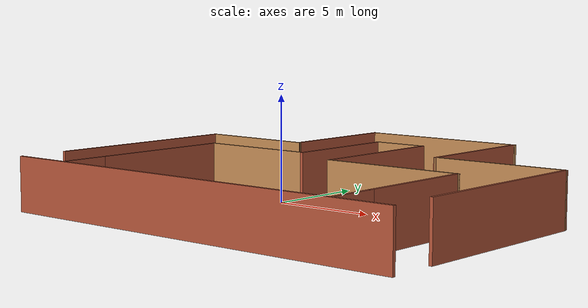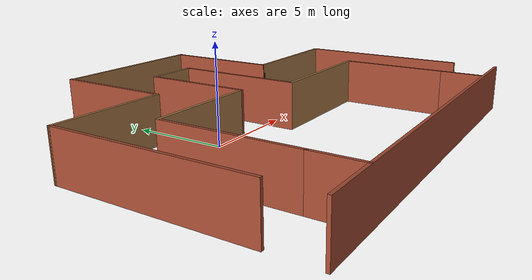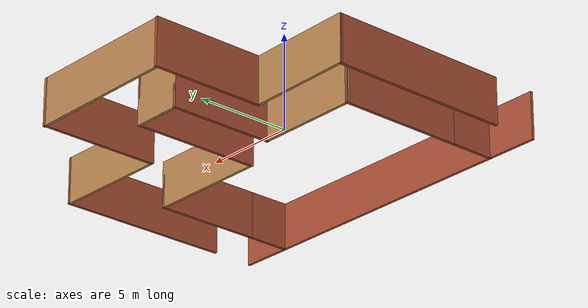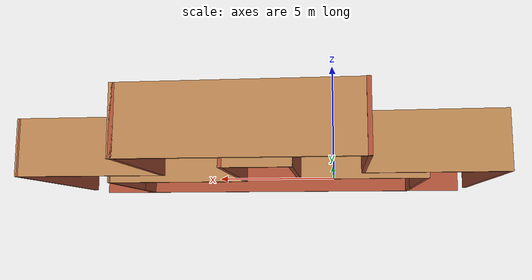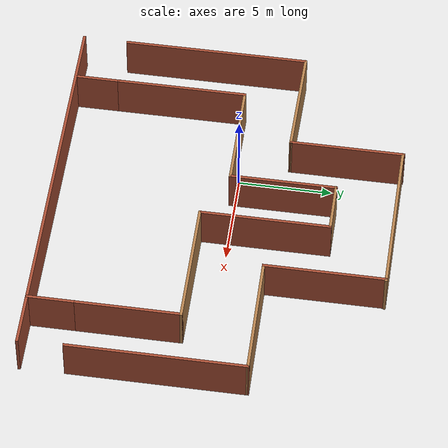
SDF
<?xml version='1.0'?>
<sdf version='1.6'>
  <model name='corridor'>
    <pose frame=''>3.29392 -0.421323 0 0 -0 0</pose>
    <link name='Wall_0'>
      <collision name='Wall_0_Collision'>
        <geometry>
          <box>
            <size>9.87219 0.15 2.5</size>
          </box>
        </geometry>
        <pose frame=''>0 0 1.25 0 -0 0</pose>
      </collision>
      <visual name='Wall_0_Visual'>
        <pose frame=''>0 0 1.25 0 -0 0</pose>
        <geometry>
          <box>
            <size>9.87219 0.15 2.5</size>
          </box>
        </geometry>
        <material>
          <script>
            <uri>file://media/materials/scripts/gazebo.material</uri>
            <name>Gazebo/Bricks</name>
          </script>
          <ambient>1 1 1 1</ambient>
        </material>
        <meta>
          <layer>0</layer>
        </meta>
      </visual>
      <pose frame=''>-10.1638 -1.7826 0 0 -0 1.5708</pose>
    </link>
    <link name='Wall_1'>
      <collision name='Wall_1_Collision'>
        <geometry>
          <box>
            <size>5.83148 0.15 2.5</size>
          </box>
        </geometry>
        <pose frame=''>0 0 1.25 0 -0 0</pose>
      </collision>
      <visual name='Wall_1_Visual'>
        <pose frame=''>0 0 1.25 0 -0 0</pose>
        <geometry>
          <box>
            <size>5.83148 0.15 2.5</size>
          </box>
        </geometry>
        <material>
          <script>
            <uri>file://media/materials/scripts/gazebo.material</uri>
            <name>Gazebo/Wood</name>
          </script>
          <ambient>1 1 1 1</ambient>
        </material>
        <meta>
          <layer>0</layer>
        </meta>
      </visual>
      <pose frame=''>-7.32317 3.0785 0 0 -0 -0.016376</pose>
    </link>
    <link name='Wall_10'>
      <collision name='Wall_10_Collision'>
        <geometry>
          <box>
            <size>5.75 0.15 2.5</size>
          </box>
        </geometry>
        <pose frame=''>0 0 1.25 0 -0 0</pose>
      </collision>
      <visual name='Wall_10_Visual'>
        <pose frame=''>0 0 1.25 0 -0 0</pose>
        <geometry>
          <box>
            <size>5.75 0.15 2.5</size>
          </box>
        </geometry>
        <material>
          <script>
            <uri>file://media/materials/scripts/gazebo.material</uri>
            <name>Gazebo/Wood</name>
          </script>
          <ambient>1 1 1 1</ambient>
        </material>
        <meta>
          <layer>0</layer>
        </meta>
      </visual>
      <pose frame=''>-4.58357 0.166413 0 0 -0 0</pose>
    </link>
    <link name='Wall_11'>
      <collision name='Wall_11_Collision'>
        <geometry>
          <box>
            <size>5.75 0.15 2.5</size>
          </box>
        </geometry>
        <pose frame=''>0 0 1.25 0 -0 0</pose>
      </collision>
      <visual name='Wall_11_Visual'>
        <pose frame=''>0 0 1.25 0 -0 0</pose>
        <geometry>
          <box>
            <size>5.75 0.15 2.5</size>
          </box>
        </geometry>
        <material>
          <script>
            <uri>file://media/materials/scripts/gazebo.material</uri>
            <name>Gazebo/Bricks</name>
          </script>
          <ambient>1 1 1 1</ambient>
        </material>
        <meta>
          <layer>0</layer>
        </meta>
      </visual>
      <pose frame=''>-1.78357 2.96641 0 0 -0 1.5708</pose>
    </link>
    <link name='Wall_12'>
      <collision name='Wall_12_Collision'>
        <geometry>
          <box>
            <size>2.75 0.15 2.5</size>
          </box>
        </geometry>
        <pose frame=''>0 0 1.25 0 -0 0</pose>
      </collision>
      <visual name='Wall_12_Visual'>
        <pose frame=''>0 0 1.25 0 -0 0</pose>
        <geometry>
          <box>
            <size>2.75 0.15 2.5</size>
          </box>
        </geometry>
        <material>
          <script>
            <uri>file://media/materials/scripts/gazebo.material</uri>
            <name>Gazebo/Wood</name>
          </script>
          <ambient>1 1 1 1</ambient>
        </material>
        <meta>
          <layer>0</layer>
        </meta>
      </visual>
      <pose frame=''>-0.483565 5.76641 0 0 -0 0</pose>
    </link>
    <link name='Wall_13'>
      <collision name='Wall_13_Collision'>
        <geometry>
          <box>
            <size>7 0.15 2.5</size>
          </box>
        </geometry>
        <pose frame=''>0 0 1.25 0 -0 0</pose>
      </collision>
      <visual name='Wall_13_Visual'>
        <pose frame=''>0 0 1.25 0 -0 0</pose>
        <geometry>
          <box>
            <size>7 0.15 2.5</size>
          </box>
        </geometry>
        <material>
          <script>
            <uri>file://media/materials/scripts/gazebo.material</uri>
            <name>Gazebo/Bricks</name>
          </script>
          <ambient>1 1 1 1</ambient>
        </material>
        <meta>
          <layer>0</layer>
        </meta>
      </visual>
      <pose frame=''>0.816435 2.34141 0 0 -0 -1.5708</pose>
    </link>
    <link name='Wall_14'>
      <collision name='Wall_14_Collision'>
        <geometry>
          <box>
            <size>6.75 0.15 2.5</size>
          </box>
        </geometry>
        <pose frame=''>0 0 1.25 0 -0 0</pose>
      </collision>
      <visual name='Wall_14_Visual'>
        <pose frame=''>0 0 1.25 0 -0 0</pose>
        <geometry>
          <box>
            <size>6.75 0.15 2.5</size>
          </box>
        </geometry>
        <material>
          <script>
            <uri>file://media/materials/scripts/gazebo.material</uri>
            <name>Gazebo/Wood</name>
          </script>
          <ambient>1 1 1 1</ambient>
        </material>
        <meta>
          <layer>0</layer>
        </meta>
      </visual>
      <pose frame=''>4.11644 -1.08359 0 0 -0 0</pose>
    </link>
    <link name='Wall_15'>
      <collision name='Wall_15_Collision'>
        <geometry>
          <box>
            <size>5.75 0.15 2.5</size>
          </box>
        </geometry>
        <pose frame=''>0 0 1.25 0 -0 0</pose>
      </collision>
      <visual name='Wall_15_Visual'>
        <pose frame=''>0 0 1.25 0 -0 0</pose>
        <geometry>
          <box>
            <size>5.75 0.15 2.5</size>
          </box>
        </geometry>
        <material>
          <script>
            <uri>file://media/materials/scripts/gazebo.material</uri>
            <name>Gazebo/Bricks</name>
          </script>
          <ambient>1 1 1 1</ambient>
        </material>
        <meta>
          <layer>0</layer>
        </meta>
      </visual>
      <pose frame=''>7.41643 -3.88359 0 0 -0 -1.5708</pose>
    </link>
    <link name='Wall_18'>
      <collision name='Wall_18_Collision'>
        <geometry>
          <box>
            <size>20.5 0.15 2.5</size>
          </box>
        </geometry>
        <pose frame=''>0 0 1.25 0 -0 0</pose>
      </collision>
      <visual name='Wall_18_Visual'>
        <pose frame=''>0 0 1.25 0 -0 0</pose>
        <geometry>
          <box>
            <size>20.5 0.15 2.5</size>
          </box>
        </geometry>
        <material>
          <script>
            <uri>file://media/materials/scripts/gazebo.material</uri>
            <name>Gazebo/Bricks</name>
          </script>
          <ambient>1 1 1 1</ambient>
        </material>
        <meta>
          <layer>0</layer>
        </meta>
      </visual>
      <pose frame=''>0 -9.05631 0 0 -0 0</pose>
    </link>
    <link name='Wall_2'>
      <collision name='Wall_2_Collision'>
        <geometry>
          <box>
            <size>6.12781 0.15 2.5</size>
          </box>
        </geometry>
        <pose frame=''>0 0 1.25 0 -0 0</pose>
      </collision>
      <visual name='Wall_2_Visual'>
        <pose frame=''>0 0 1.25 0 -0 0</pose>
        <geometry>
          <box>
            <size>6.12781 0.15 2.5</size>
          </box>
        </geometry>
        <material>
          <script>
            <uri>file://media/materials/scripts/gazebo.material</uri>
            <name>Gazebo/Bricks</name>
          </script>
          <ambient>1 1 1 1</ambient>
        </material>
        <meta>
          <layer>0</layer>
        </meta>
      </visual>
      <pose frame=''>-4.48253 6.0674 0 0 -0 1.5708</pose>
    </link>
    <link name='Wall_20'>
      <collision name='Wall_20_Collision'>
        <geometry>
          <box>
            <size>2.5 0.15 2.5</size>
          </box>
        </geometry>
        <pose frame=''>0 0 1.25 0 -0 0</pose>
      </collision>
      <visual name='Wall_20_Visual'>
        <pose frame=''>0 0 1.25 0 -0 0</pose>
        <geometry>
          <box>
            <size>2.5 0.15 2.5</size>
          </box>
        </geometry>
        <material>
          <script>
            <uri>file://media/materials/scripts/gazebo.material</uri>
            <name>Gazebo/Bricks</name>
          </script>
          <ambient>1 1 1 1</ambient>
        </material>
        <meta>
          <layer>0</layer>
        </meta>
      </visual>
      <pose frame=''>-7.38356 -7.85859 0 0 -0 -1.5708</pose>
    </link>
    <link name='Wall_22'>
      <collision name='Wall_22_Collision'>
        <geometry>
          <box>
            <size>2.5 0.15 2.5</size>
          </box>
        </geometry>
        <pose frame=''>0 0 1.25 0 -0 0</pose>
      </collision>
      <visual name='Wall_22_Visual'>
        <pose frame=''>0 0 1.25 0 -0 0</pose>
        <geometry>
          <box>
            <size>2.5 0.15 2.5</size>
          </box>
        </geometry>
        <material>
          <script>
            <uri>file://media/materials/scripts/gazebo.material</uri>
            <name>Gazebo/Bricks</name>
          </script>
          <ambient>1 1 1 1</ambient>
        </material>
        <meta>
          <layer>0</layer>
        </meta>
      </visual>
      <pose frame=''>7.41643 -7.85859 0 0 -0 -1.5708</pose>
    </link>
    <link name='Wall_3'>
      <collision name='Wall_3_Collision'>
        <geometry>
          <box>
            <size>8.44839 0.15 2.5</size>
          </box>
        </geometry>
        <pose frame=''>0 0 1.25 0 -0 0</pose>
      </collision>
      <visual name='Wall_3_Visual'>
        <pose frame=''>0 0 1.25 0 -0 0</pose>
        <geometry>
          <box>
            <size>8.44839 0.15 2.5</size>
          </box>
        </geometry>
        <material>
          <script>
            <uri>file://media/materials/scripts/gazebo.material</uri>
            <name>Gazebo/Wood</name>
          </script>
          <ambient>1 1 1 1</ambient>
        </material>
        <meta>
          <layer>0</layer>
        </meta>
      </visual>
      <pose frame=''>-0.333338 9.00978 0 0 -0 0</pose>
    </link>
    <link name='Wall_4'>
      <collision name='Wall_4_Collision'>
        <geometry>
          <box>
            <size>6.5 0.15 2.5</size>
          </box>
        </geometry>
        <pose frame=''>0 0 1.25 0 -0 0</pose>
      </collision>
      <visual name='Wall_4_Visual'>
        <pose frame=''>0 0 1.25 0 -0 0</pose>
        <geometry>
          <box>
            <size>6.5 0.15 2.5</size>
          </box>
        </geometry>
        <material>
          <script>
            <uri>file://media/materials/scripts/gazebo.material</uri>
            <name>Gazebo/Bricks</name>
          </script>
          <ambient>1 1 1 1</ambient>
        </material>
        <meta>
          <layer>0</layer>
        </meta>
      </visual>
      <pose frame=''>3.76933 5.83478 0 0 -0 -1.5708</pose>
    </link>
    <link name='Wall_5'>
      <collision name='Wall_5_Collision'>
        <geometry>
          <box>
            <size>6.45927 0.15 2.5</size>
          </box>
        </geometry>
        <pose frame=''>0 0 1.25 0 -0 0</pose>
      </collision>
      <visual name='Wall_5_Visual'>
        <pose frame=''>0 0 1.25 0 -0 0</pose>
        <geometry>
          <box>
            <size>6.45927 0.15 2.5</size>
          </box>
        </geometry>
        <material>
          <script>
            <uri>file://media/materials/scripts/gazebo.material</uri>
            <name>Gazebo/Wood</name>
          </script>
          <ambient>1 1 1 1</ambient>
        </material>
        <meta>
          <layer>0</layer>
        </meta>
      </visual>
      <pose frame=''>6.9704 2.68304 0 0 -0 0.007374</pose>
    </link>
    <link name='Wall_6'>
      <collision name='Wall_6_Collision'>
        <geometry>
          <box>
            <size>9.5 0.15 2.5</size>
          </box>
        </geometry>
        <pose frame=''>0 0 1.25 0 -0 0</pose>
      </collision>
      <visual name='Wall_6_Visual'>
        <pose frame=''>0 0 1.25 0 -0 0</pose>
        <geometry>
          <box>
            <size>9.5 0.15 2.5</size>
          </box>
        </geometry>
        <material>
          <script>
            <uri>file://media/materials/scripts/gazebo.material</uri>
            <name>Gazebo/Bricks</name>
          </script>
          <ambient>1 1 1 1</ambient>
        </material>
        <meta>
          <layer>0</layer>
        </meta>
      </visual>
      <pose frame=''>10.1249 -1.96869 0 0 -0 -1.5708</pose>
    </link>
    <link name='Wall_9'>
      <collision name='Wall_9_Collision'>
        <geometry>
          <box>
            <size>7 0.15 2.5</size>
          </box>
        </geometry>
        <pose frame=''>0 0 1.25 0 -0 0</pose>
      </collision>
      <visual name='Wall_9_Visual'>
        <pose frame=''>0 0 1.25 0 -0 0</pose>
        <geometry>
          <box>
            <size>7 0.15 2.5</size>
          </box>
        </geometry>
        <material>
          <script>
            <uri>file://media/materials/scripts/gazebo.material</uri>
            <name>Gazebo/Bricks</name>
          </script>
          <ambient>1 1 1 1</ambient>
        </material>
        <meta>
          <layer>0</layer>
        </meta>
      </visual>
      <pose frame=''>-7.38356 -3.25859 0 0 -0 1.5708</pose>
    </link>
    <static>1</static>
  </model>
</sdf>
